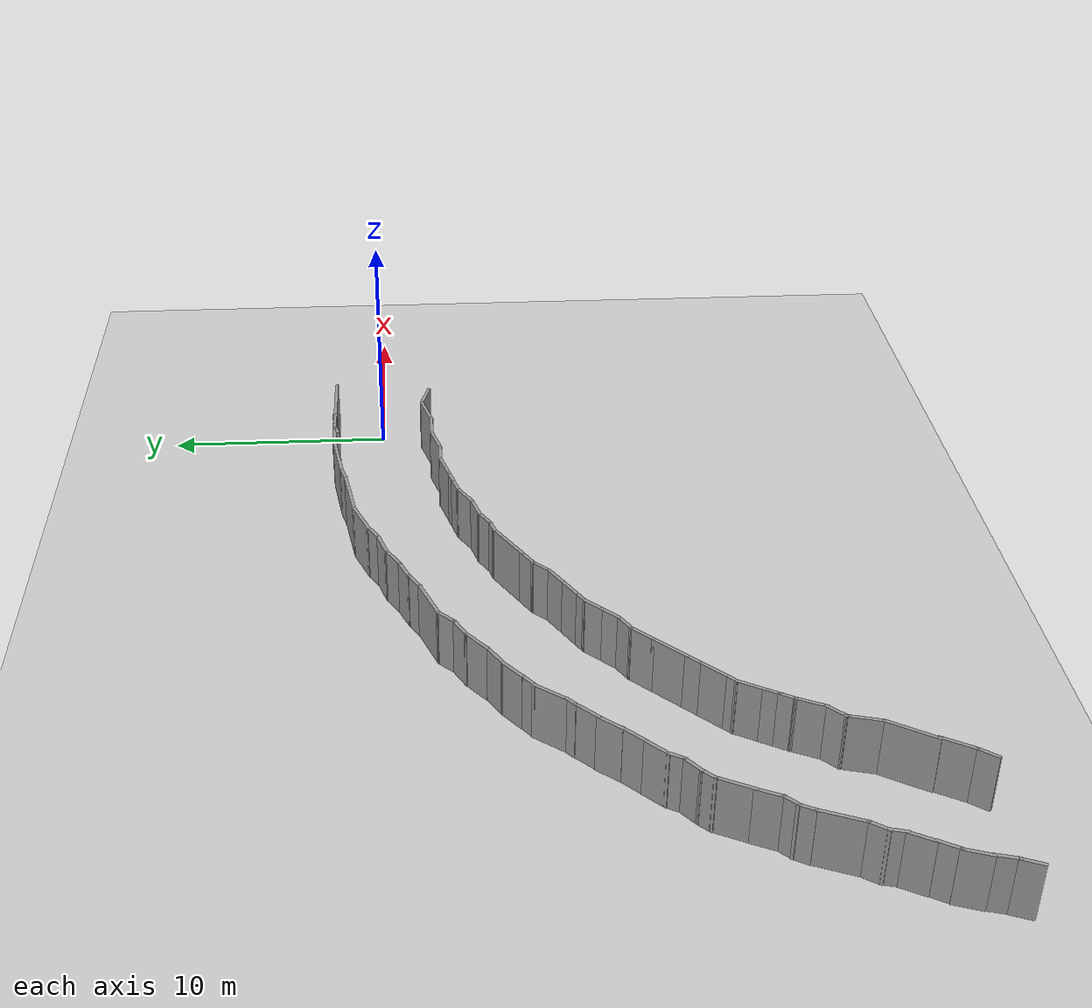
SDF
<sdf version="1.6">
 <world name="default">
  <model name="ground_plane">
   <static>1</static>
   <link name="link">
    <collision name="collision">
     <geometry><plane><normal>0 0 1</normal><size>100 100</size></plane></geometry>
     <surface><friction><ode><mu>100</mu><mu2>50</mu2></ode></friction></surface>
    </collision>
    <visual name="visual">
     <cast_shadows>0</cast_shadows>
     <geometry><plane><normal>0 0 1</normal><size>100 100</size></plane></geometry>
     <material>
      <script><uri>file://media/materials/scripts/gazebo.material</uri><name>Gazebo/Grey</name></script>
     </material>
    </visual>
   </link>
  </model>
  <model name="yuvarlak_sonnn">
   <pose>8.74042 -31.6469 0 0 -0 0</pose>
   <link name="Wall_0">
    <collision name="Wall_0_Collision">
     <geometry><box><size>1.75 0.15 2.5</size></box></geometry>
     <pose>0 0 1.25 0 -0 0</pose>
    </collision>
    <visual name="Wall_0_Visual">
     <pose>0 0 1.25 0 -0 0</pose>
     <geometry><box><size>1.75 0.15 2.5</size></box></geometry>
     <material>
      <script><uri>file://media/materials/scripts/gazebo.material</uri><name>Gazebo/Grey</name></script>
      <ambient>1 1 1 1</ambient>
     </material>
    </visual>
    <pose>-12.1248 33.8367 0 0 -0 3.14159</pose>
   </link>
   <link name="Wall_1">
    <collision name="Wall_1_Collision">
     <geometry><box><size>2.72829 0.15 2.5</size></box></geometry>
     <pose>0 0 1.25 0 -0 0</pose>
    </collision>
    <visual name="Wall_1_Visual">
     <pose>0 0 1.25 0 -0 0</pose>
     <geometry><box><size>2.72829 0.15 2.5</size></box></geometry>
     <material>
      <script><uri>file://media/materials/scripts/gazebo.material</uri><name>Gazebo/Grey</name></script>
      <ambient>1 1 1 1</ambient>
     </material>
    </visual>
    <pose>-14.1992 33.6426 0 0 0 -2.99044</pose>
   </link>
   <link name="Wall_10">
    <collision name="Wall_10_Collision">
     <geometry><box><size>2.14763 0.15 2.5</size></box></geometry>
     <pose>0 0 1.25 0 -0 0</pose>
    </collision>
    <visual name="Wall_10_Visual">
     <pose>0 0 1.25 0 -0 0</pose>
     <geometry><box><size>2.14763 0.15 2.5</size></box></geometry>
     <material>
      <script><uri>file://media/materials/scripts/gazebo.material</uri><name>Gazebo/Grey</name></script>
      <ambient>1 1 1 1</ambient>
     </material>
    </visual>
    <pose>-25.8104 29.7111 0 0 0 -2.77887</pose>
   </link>
   <link name="Wall_11">
    <collision name="Wall_11_Collision">
     <geometry><box><size>1 0.15 2.5</size></box></geometry>
     <pose>0 0 1.25 0 -0 0</pose>
    </collision>
    <visual name="Wall_11_Visual">
     <pose>0 0 1.25 0 -0 0</pose>
     <geometry><box><size>1 0.15 2.5</size></box></geometry>
     <material>
      <script><uri>file://media/materials/scripts/gazebo.material</uri><name>Gazebo/Grey</name></script>
      <ambient>1 1 1 1</ambient>
     </material>
    </visual>
    <pose>-27.0448 29.0562 0 0 0 -2.35619</pose>
   </link>
   <link name="Wall_12">
    <collision name="Wall_12_Collision">
     <geometry><box><size>1.1633 0.15 2.5</size></box></geometry>
     <pose>0 0 1.25 0 -0 0</pose>
    </collision>
    <visual name="Wall_12_Visual">
     <pose>0 0 1.25 0 -0 0</pose>
     <geometry><box><size>1.1633 0.15 2.5</size></box></geometry>
     <material>
      <script><uri>file://media/materials/scripts/gazebo.material</uri><name>Gazebo/Grey</name></script>
      <ambient>1 1 1 1</ambient>
     </material>
    </visual>
    <pose>-27.7967 28.5256 0 0 0 -2.67011</pose>
   </link>
   <link name="Wall_13">
    <collision name="Wall_13_Collision">
     <geometry><box><size>1.34384 0.15 2.5</size></box></geometry>
     <pose>0 0 1.25 0 -0 0</pose>
    </collision>
    <visual name="Wall_13_Visual">
     <pose>0 0 1.25 0 -0 0</pose>
     <geometry><box><size>1.34384 0.15 2.5</size></box></geometry>
     <material>
      <script><uri>file://media/materials/scripts/gazebo.material</uri><name>Gazebo/Grey</name></script>
      <ambient>1 1 1 1</ambient>
     </material>
    </visual>
    <pose>-28.6973 27.9267 0 0 0 -2.47561</pose>
   </link>
   <link name="Wall_14">
    <collision name="Wall_14_Collision">
     <geometry><box><size>1.25 0.15 2.5</size></box></geometry>
     <pose>0 0 1.25 0 -0 0</pose>
    </collision>
    <visual name="Wall_14_Visual">
     <pose>0 0 1.25 0 -0 0</pose>
     <geometry><box><size>1.25 0.15 2.5</size></box></geometry>
     <material>
      <script><uri>file://media/materials/scripts/gazebo.material</uri><name>Gazebo/Grey</name></script>
      <ambient>1 1 1 1</ambient>
     </material>
    </visual>
    <pose>-29.643 27.2628 0 0 0 -2.61799</pose>
   </link>
   <link name="Wall_15">
    <collision name="Wall_15_Collision">
     <geometry><box><size>1.22954 0.15 2.5</size></box></geometry>
     <pose>0 0 1.25 0 -0 0</pose>
    </collision>
    <visual name="Wall_15_Visual">
     <pose>0 0 1.25 0 -0 0</pose>
     <geometry><box><size>1.22954 0.15 2.5</size></box></geometry>
     <material>
      <script><uri>file://media/materials/scripts/gazebo.material</uri><name>Gazebo/Grey</name></script>
      <ambient>1 1 1 1</ambient>
     </material>
    </visual>
    <pose>-30.5452 26.6562 0 0 0 -2.48018</pose>
   </link>
   <link name="Wall_16">
    <collision name="Wall_16_Collision">
     <geometry><box><size>0.850612 0.15 2.5</size></box></geometry>
     <pose>0 0 1.25 0 -0 0</pose>
    </collision>
    <visual name="Wall_16_Visual">
     <pose>0 0 1.25 0 -0 0</pose>
     <geometry><box><size>0.850612 0.15 2.5</size></box></geometry>
     <material>
      <script><uri>file://media/materials/scripts/gazebo.material</uri><name>Gazebo/Grey</name></script>
      <ambient>1 1 1 1</ambient>
     </material>
    </visual>
    <pose>-31.2519 26.095 0 0 0 -2.50044</pose>
   </link>
   <link name="Wall_163">
    <collision name="Wall_163_Collision">
     <geometry><box><size>3 0.15 2.5</size></box></geometry>
     <pose>0 0 1.25 0 -0 0</pose>
    </collision>
    <visual name="Wall_163_Visual">
     <pose>0 0 1.25 0 -0 0</pose>
     <geometry><box><size>3 0.15 2.5</size></box></geometry>
     <material>
      <script><uri>file://media/materials/scripts/gazebo.material</uri><name>Gazebo/Grey</name></script>
      <ambient>1 1 1 1</ambient>
     </material>
    </visual>
    <pose>-9.04749 33.8433 0 0 -0 3.14159</pose>
   </link>
   <link name="Wall_164">
    <collision name="Wall_164_Collision">
     <geometry><box><size>0.182988 0.15 2.5</size></box></geometry>
     <pose>0 0 1.25 0 -0 0</pose>
    </collision>
    <visual name="Wall_164_Visual">
     <pose>0 0 1.25 0 -0 0</pose>
     <geometry><box><size>0.182988 0.15 2.5</size></box></geometry>
     <material>
      <script><uri>file://media/materials/scripts/gazebo.material</uri><name>Gazebo/Grey</name></script>
      <ambient>1 1 1 1</ambient>
     </material>
    </visual>
    <pose>-10.4874 33.8564 0 0 0 -2.70446</pose>
   </link>
   <link name="Wall_165">
    <collision name="Wall_165_Collision">
     <geometry><box><size>1.25 0.15 2.5</size></box></geometry>
     <pose>0 0 1.25 0 -0 0</pose>
    </collision>
    <visual name="Wall_165_Visual">
     <pose>0 0 1.25 0 -0 0</pose>
     <geometry><box><size>1.25 0.15 2.5</size></box></geometry>
     <material>
      <script><uri>file://media/materials/scripts/gazebo.material</uri><name>Gazebo/Grey</name></script>
      <ambient>1 1 1 1</ambient>
     </material>
    </visual>
    <pose>-11.0524 33.8494 0 0 -0 3.14159</pose>
   </link>
   <link name="Wall_166">
    <collision name="Wall_166_Collision">
     <geometry><box><size>0.75 0.15 2.5</size></box></geometry>
     <pose>0 0 1.25 0 -0 0</pose>
    </collision>
    <visual name="Wall_166_Visual">
     <pose>0 0 1.25 0 -0 0</pose>
     <geometry><box><size>0.75 0.15 2.5</size></box></geometry>
     <material>
      <script><uri>file://media/materials/scripts/gazebo.material</uri><name>Gazebo/Grey</name></script>
      <ambient>1 1 1 1</ambient>
     </material>
    </visual>
    <pose>-11.8922 33.7718 0 0 0 -2.87979</pose>
   </link>
   <link name="Wall_17">
    <collision name="Wall_17_Collision">
     <geometry><box><size>1.59545 0.15 2.5</size></box></geometry>
     <pose>0 0 1.25 0 -0 0</pose>
    </collision>
    <visual name="Wall_17_Visual">
     <pose>0 0 1.25 0 -0 0</pose>
     <geometry><box><size>1.59545 0.15 2.5</size></box></geometry>
     <material>
      <script><uri>file://media/materials/scripts/gazebo.material</uri><name>Gazebo/Grey</name></script>
      <ambient>1 1 1 1</ambient>
     </material>
    </visual>
    <pose>-31.9798 25.3378 0 0 0 -2.23785</pose>
   </link>
   <link name="Wall_18">
    <collision name="Wall_18_Collision">
     <geometry><box><size>0.617622 0.15 2.5</size></box></geometry>
     <pose>0 0 1.25 0 -0 0</pose>
    </collision>
    <visual name="Wall_18_Visual">
     <pose>0 0 1.25 0 -0 0</pose>
     <geometry><box><size>0.617622 0.15 2.5</size></box></geometry>
     <material>
      <script><uri>file://media/materials/scripts/gazebo.material</uri><name>Gazebo/Grey</name></script>
      <ambient>1 1 1 1</ambient>
     </material>
    </visual>
    <pose>-32.5861 24.62 0 0 0 -2.44508</pose>
   </link>
   <link name="Wall_184">
    <collision name="Wall_184_Collision">
     <geometry><box><size>0.75 0.15 2.5</size></box></geometry>
     <pose>0 0 1.25 0 -0 0</pose>
    </collision>
    <visual name="Wall_184_Visual">
     <pose>0 0 1.25 0 -0 0</pose>
     <geometry><box><size>0.75 0.15 2.5</size></box></geometry>
     <material>
      <script><uri>file://media/materials/scripts/gazebo.material</uri><name>Gazebo/Grey</name></script>
      <ambient>1 1 1 1</ambient>
     </material>
    </visual>
    <pose>-32.7119 16.5989 0 0 0 -2.0944</pose>
   </link>
   <link name="Wall_186">
    <collision name="Wall_186_Collision">
     <geometry><box><size>0.75 0.15 2.5</size></box></geometry>
     <pose>0 0 1.25 0 -0 0</pose>
    </collision>
    <visual name="Wall_186_Visual">
     <pose>0 0 1.25 0 -0 0</pose>
     <geometry><box><size>0.75 0.15 2.5</size></box></geometry>
     <material>
      <script><uri>file://media/materials/scripts/gazebo.material</uri><name>Gazebo/Grey</name></script>
      <ambient>1 1 1 1</ambient>
     </material>
    </visual>
    <pose>-32.4119 17.1185 0 0 -0 1.0472</pose>
   </link>
   <link name="Wall_187">
    <collision name="Wall_187_Collision">
     <geometry><box><size>1.25 0.15 2.5</size></box></geometry>
     <pose>0 0 1.25 0 -0 0</pose>
    </collision>
    <visual name="Wall_187_Visual">
     <pose>0 0 1.25 0 -0 0</pose>
     <geometry><box><size>1.25 0.15 2.5</size></box></geometry>
     <material>
      <script><uri>file://media/materials/scripts/gazebo.material</uri><name>Gazebo/Grey</name></script>
      <ambient>1 1 1 1</ambient>
     </material>
    </visual>
    <pose>-31.9869 17.8546 0 0 -0 1.0472</pose>
   </link>
   <link name="Wall_188">
    <collision name="Wall_188_Collision">
     <geometry><box><size>0.5 0.15 2.5</size></box></geometry>
     <pose>0 0 1.25 0 -0 0</pose>
    </collision>
    <visual name="Wall_188_Visual">
     <pose>0 0 1.25 0 -0 0</pose>
     <geometry><box><size>0.5 0.15 2.5</size></box></geometry>
     <material>
      <script><uri>file://media/materials/scripts/gazebo.material</uri><name>Gazebo/Grey</name></script>
      <ambient>1 1 1 1</ambient>
     </material>
    </visual>
    <pose>-31.5881 18.4547 0 0 -0 0.785398</pose>
   </link>
   <link name="Wall_189">
    <collision name="Wall_189_Collision">
     <geometry><box><size>1.5 0.15 2.5</size></box></geometry>
     <pose>0 0 1.25 0 -0 0</pose>
    </collision>
    <visual name="Wall_189_Visual">
     <pose>0 0 1.25 0 -0 0</pose>
     <geometry><box><size>1.5 0.15 2.5</size></box></geometry>
     <material>
      <script><uri>file://media/materials/scripts/gazebo.material</uri><name>Gazebo/Grey</name></script>
      <ambient>1 1 1 1</ambient>
     </material>
    </visual>
    <pose>-30.9871 19.0557 0 0 -0 0.785398</pose>
   </link>
   <link name="Wall_190">
    <collision name="Wall_190_Collision">
     <geometry><box><size>0.75 0.15 2.5</size></box></geometry>
     <pose>0 0 1.25 0 -0 0</pose>
    </collision>
    <visual name="Wall_190_Visual">
     <pose>0 0 1.25 0 -0 0</pose>
     <geometry><box><size>0.75 0.15 2.5</size></box></geometry>
     <material>
      <script><uri>file://media/materials/scripts/gazebo.material</uri><name>Gazebo/Grey</name></script>
      <ambient>1 1 1 1</ambient>
     </material>
    </visual>
    <pose>-30.2977 19.7452 0 0 -0 0.785398</pose>
   </link>
   <link name="Wall_191">
    <collision name="Wall_191_Collision">
     <geometry><box><size>1.75 0.15 2.5</size></box></geometry>
     <pose>0 0 1.25 0 -0 0</pose>
    </collision>
    <visual name="Wall_191_Visual">
     <pose>0 0 1.25 0 -0 0</pose>
     <geometry><box><size>1.75 0.15 2.5</size></box></geometry>
     <material>
      <script><uri>file://media/materials/scripts/gazebo.material</uri><name>Gazebo/Grey</name></script>
      <ambient>1 1 1 1</ambient>
     </material>
    </visual>
    <pose>-29.5199 20.523 0 0 -0 0.785398</pose>
   </link>
   <link name="Wall_192">
    <collision name="Wall_192_Collision">
     <geometry><box><size>1.25 0.15 2.5</size></box></geometry>
     <pose>0 0 1.25 0 -0 0</pose>
    </collision>
    <visual name="Wall_192_Visual">
     <pose>0 0 1.25 0 -0 0</pose>
     <geometry><box><size>1.25 0.15 2.5</size></box></geometry>
     <material>
      <script><uri>file://media/materials/scripts/gazebo.material</uri><name>Gazebo/Grey</name></script>
      <ambient>1 1 1 1</ambient>
     </material>
    </visual>
    <pose>-28.5653 21.4776 0 0 -0 0.785398</pose>
   </link>
   <link name="Wall_193">
    <collision name="Wall_193_Collision">
     <geometry><box><size>1 0.15 2.5</size></box></geometry>
     <pose>0 0 1.25 0 -0 0</pose>
    </collision>
    <visual name="Wall_193_Visual">
     <pose>0 0 1.25 0 -0 0</pose>
     <geometry><box><size>1 0.15 2.5</size></box></geometry>
     <material>
      <script><uri>file://media/materials/scripts/gazebo.material</uri><name>Gazebo/Grey</name></script>
      <ambient>1 1 1 1</ambient>
     </material>
    </visual>
    <pose>-27.8083 22.079 0 0 -0 0.523599</pose>
   </link>
   <link name="Wall_194">
    <collision name="Wall_194_Collision">
     <geometry><box><size>1 0.15 2.5</size></box></geometry>
     <pose>0 0 1.25 0 -0 0</pose>
    </collision>
    <visual name="Wall_194_Visual">
     <pose>0 0 1.25 0 -0 0</pose>
     <geometry><box><size>1 0.15 2.5</size></box></geometry>
     <material>
      <script><uri>file://media/materials/scripts/gazebo.material</uri><name>Gazebo/Grey</name></script>
      <ambient>1 1 1 1</ambient>
     </material>
    </visual>
    <pose>-27.1397 22.592 0 0 -0 0.785398</pose>
   </link>
   <link name="Wall_195">
    <collision name="Wall_195_Collision">
     <geometry><box><size>1 0.15 2.5</size></box></geometry>
     <pose>0 0 1.25 0 -0 0</pose>
    </collision>
    <visual name="Wall_195_Visual">
     <pose>0 0 1.25 0 -0 0</pose>
     <geometry><box><size>1 0.15 2.5</size></box></geometry>
     <material>
      <script><uri>file://media/materials/scripts/gazebo.material</uri><name>Gazebo/Grey</name></script>
      <ambient>1 1 1 1</ambient>
     </material>
    </visual>
    <pose>-26.5387 23.1931 0 0 -0 0.785398</pose>
   </link>
   <link name="Wall_196">
    <collision name="Wall_196_Collision">
     <geometry><box><size>0.75 0.15 2.5</size></box></geometry>
     <pose>0 0 1.25 0 -0 0</pose>
    </collision>
    <visual name="Wall_196_Visual">
     <pose>0 0 1.25 0 -0 0</pose>
     <geometry><box><size>0.75 0.15 2.5</size></box></geometry>
     <material>
      <script><uri>file://media/materials/scripts/gazebo.material</uri><name>Gazebo/Grey</name></script>
      <ambient>1 1 1 1</ambient>
     </material>
    </visual>
    <pose>-25.9783 23.6436 0 0 -0 0.523599</pose>
   </link>
   <link name="Wall_197">
    <collision name="Wall_197_Collision">
     <geometry><box><size>1 0.15 2.5</size></box></geometry>
     <pose>0 0 1.25 0 -0 0</pose>
    </collision>
    <visual name="Wall_197_Visual">
     <pose>0 0 1.25 0 -0 0</pose>
     <geometry><box><size>1 0.15 2.5</size></box></geometry>
     <material>
      <script><uri>file://media/materials/scripts/gazebo.material</uri><name>Gazebo/Grey</name></script>
      <ambient>1 1 1 1</ambient>
     </material>
    </visual>
    <pose>-25.3505 24.0061 0 0 -0 0.523599</pose>
   </link>
   <link name="Wall_198">
    <collision name="Wall_198_Collision">
     <geometry><box><size>1.25 0.15 2.5</size></box></geometry>
     <pose>0 0 1.25 0 -0 0</pose>
    </collision>
    <visual name="Wall_198_Visual">
     <pose>0 0 1.25 0 -0 0</pose>
     <geometry><box><size>1.25 0.15 2.5</size></box></geometry>
     <material>
      <script><uri>file://media/materials/scripts/gazebo.material</uri><name>Gazebo/Grey</name></script>
      <ambient>1 1 1 1</ambient>
     </material>
    </visual>
    <pose>-24.5061 24.4936 0 0 -0 0.523599</pose>
   </link>
   <link name="Wall_199">
    <collision name="Wall_199_Collision">
     <geometry><box><size>1 0.15 2.5</size></box></geometry>
     <pose>0 0 1.25 0 -0 0</pose>
    </collision>
    <visual name="Wall_199_Visual">
     <pose>0 0 1.25 0 -0 0</pose>
     <geometry><box><size>1 0.15 2.5</size></box></geometry>
     <material>
      <script><uri>file://media/materials/scripts/gazebo.material</uri><name>Gazebo/Grey</name></script>
      <ambient>1 1 1 1</ambient>
     </material>
    </visual>
    <pose>-23.7293 25.0691 0 0 -0 0.785398</pose>
   </link>
   <link name="Wall_2">
    <collision name="Wall_2_Collision">
     <geometry><box><size>1 0.15 2.5</size></box></geometry>
     <pose>0 0 1.25 0 -0 0</pose>
    </collision>
    <visual name="Wall_2_Visual">
     <pose>0 0 1.25 0 -0 0</pose>
     <geometry><box><size>1 0.15 2.5</size></box></geometry>
     <material>
      <script><uri>file://media/materials/scripts/gazebo.material</uri><name>Gazebo/Grey</name></script>
      <ambient>1 1 1 1</ambient>
     </material>
    </visual>
    <pose>-15.8842 33.3385 0 0 0 -2.87979</pose>
   </link>
   <link name="Wall_20">
    <collision name="Wall_20_Collision">
     <geometry><box><size>1.25 0.15 2.5</size></box></geometry>
     <pose>0 0 1.25 0 -0 0</pose>
    </collision>
    <visual name="Wall_20_Visual">
     <pose>0 0 1.25 0 -0 0</pose>
     <geometry><box><size>1.25 0.15 2.5</size></box></geometry>
     <material>
      <script><uri>file://media/materials/scripts/gazebo.material</uri><name>Gazebo/Grey</name></script>
      <ambient>1 1 1 1</ambient>
     </material>
    </visual>
    <pose>-33.1343 24.0811 0 0 0 -2.35619</pose>
   </link>
   <link name="Wall_200">
    <collision name="Wall_200_Collision">
     <geometry><box><size>1 0.15 2.5</size></box></geometry>
     <pose>0 0 1.25 0 -0 0</pose>
    </collision>
    <visual name="Wall_200_Visual">
     <pose>0 0 1.25 0 -0 0</pose>
     <geometry><box><size>1 0.15 2.5</size></box></geometry>
     <material>
      <script><uri>file://media/materials/scripts/gazebo.material</uri><name>Gazebo/Grey</name></script>
      <ambient>1 1 1 1</ambient>
     </material>
    </visual>
    <pose>-23.0607 25.5821 0 0 -0 0.523599</pose>
   </link>
   <link name="Wall_201">
    <collision name="Wall_201_Collision">
     <geometry><box><size>2.25 0.15 2.5</size></box></geometry>
     <pose>0 0 1.25 0 -0 0</pose>
    </collision>
    <visual name="Wall_201_Visual">
     <pose>0 0 1.25 0 -0 0</pose>
     <geometry><box><size>2.25 0.15 2.5</size></box></geometry>
     <material>
      <script><uri>file://media/materials/scripts/gazebo.material</uri><name>Gazebo/Grey</name></script>
      <ambient>1 1 1 1</ambient>
     </material>
    </visual>
    <pose>-21.7833 26.3196 0 0 -0 0.523599</pose>
   </link>
   <link name="Wall_202">
    <collision name="Wall_202_Collision">
     <geometry><box><size>0.75 0.15 2.5</size></box></geometry>
     <pose>0 0 1.25 0 -0 0</pose>
    </collision>
    <visual name="Wall_202_Visual">
     <pose>0 0 1.25 0 -0 0</pose>
     <geometry><box><size>0.75 0.15 2.5</size></box></geometry>
     <material>
      <script><uri>file://media/materials/scripts/gazebo.material</uri><name>Gazebo/Grey</name></script>
      <ambient>1 1 1 1</ambient>
     </material>
    </visual>
    <pose>-20.5842 26.9223 0 0 -0 0.261799</pose>
   </link>
   <link name="Wall_203">
    <collision name="Wall_203_Collision">
     <geometry><box><size>1 0.15 2.5</size></box></geometry>
     <pose>0 0 1.25 0 -0 0</pose>
    </collision>
    <visual name="Wall_203_Visual">
     <pose>0 0 1.25 0 -0 0</pose>
     <geometry><box><size>1 0.15 2.5</size></box></geometry>
     <material>
      <script><uri>file://media/materials/scripts/gazebo.material</uri><name>Gazebo/Grey</name></script>
      <ambient>1 1 1 1</ambient>
     </material>
    </visual>
    <pose>-19.9264 27.2124 0 0 -0 0.523599</pose>
   </link>
   <link name="Wall_204">
    <collision name="Wall_204_Collision">
     <geometry><box><size>1.25 0.15 2.5</size></box></geometry>
     <pose>0 0 1.25 0 -0 0</pose>
    </collision>
    <visual name="Wall_204_Visual">
     <pose>0 0 1.25 0 -0 0</pose>
     <geometry><box><size>1.25 0.15 2.5</size></box></geometry>
     <material>
      <script><uri>file://media/materials/scripts/gazebo.material</uri><name>Gazebo/Grey</name></script>
      <ambient>1 1 1 1</ambient>
     </material>
    </visual>
    <pose>-19.027 27.5673 0 0 -0 0.261799</pose>
   </link>
   <link name="Wall_205">
    <collision name="Wall_205_Collision">
     <geometry><box><size>1.25 0.15 2.5</size></box></geometry>
     <pose>0 0 1.25 0 -0 0</pose>
    </collision>
    <visual name="Wall_205_Visual">
     <pose>0 0 1.25 0 -0 0</pose>
     <geometry><box><size>1.25 0.15 2.5</size></box></geometry>
     <material>
      <script><uri>file://media/materials/scripts/gazebo.material</uri><name>Gazebo/Grey</name></script>
      <ambient>1 1 1 1</ambient>
     </material>
    </visual>
    <pose>-18.0195 27.9846 0 0 -0 0.523599</pose>
   </link>
   <link name="Wall_206">
    <collision name="Wall_206_Collision">
     <geometry><box><size>1 0.15 2.5</size></box></geometry>
     <pose>0 0 1.25 0 -0 0</pose>
    </collision>
    <visual name="Wall_206_Visual">
     <pose>0 0 1.25 0 -0 0</pose>
     <geometry><box><size>1 0.15 2.5</size></box></geometry>
     <material>
      <script><uri>file://media/materials/scripts/gazebo.material</uri><name>Gazebo/Grey</name></script>
      <ambient>1 1 1 1</ambient>
     </material>
    </visual>
    <pose>-17.1326 28.3696 0 0 -0 0.261799</pose>
   </link>
   <link name="Wall_207">
    <collision name="Wall_207_Collision">
     <geometry><box><size>0.75 0.15 2.5</size></box></geometry>
     <pose>0 0 1.25 0 -0 0</pose>
    </collision>
    <visual name="Wall_207_Visual">
     <pose>0 0 1.25 0 -0 0</pose>
     <geometry><box><size>0.75 0.15 2.5</size></box></geometry>
     <material>
      <script><uri>file://media/materials/scripts/gazebo.material</uri><name>Gazebo/Grey</name></script>
      <ambient>1 1 1 1</ambient>
     </material>
    </visual>
    <pose>-16.4323 28.5572 0 0 -0 0.261799</pose>
   </link>
   <link name="Wall_208">
    <collision name="Wall_208_Collision">
     <geometry><box><size>1.5 0.15 2.5</size></box></geometry>
     <pose>0 0 1.25 0 -0 0</pose>
    </collision>
    <visual name="Wall_208_Visual">
     <pose>0 0 1.25 0 -0 0</pose>
     <geometry><box><size>1.5 0.15 2.5</size></box></geometry>
     <material>
      <script><uri>file://media/materials/scripts/gazebo.material</uri><name>Gazebo/Grey</name></script>
      <ambient>1 1 1 1</ambient>
     </material>
    </visual>
    <pose>-15.4906 28.8096 0 0 -0 0.261799</pose>
   </link>
   <link name="Wall_209">
    <collision name="Wall_209_Collision">
     <geometry><box><size>1.25 0.15 2.5</size></box></geometry>
     <pose>0 0 1.25 0 -0 0</pose>
    </collision>
    <visual name="Wall_209_Visual">
     <pose>0 0 1.25 0 -0 0</pose>
     <geometry><box><size>1.25 0.15 2.5</size></box></geometry>
     <material>
      <script><uri>file://media/materials/scripts/gazebo.material</uri><name>Gazebo/Grey</name></script>
      <ambient>1 1 1 1</ambient>
     </material>
    </visual>
    <pose>-14.2886 28.9843 0 0 -0 0</pose>
   </link>
   <link name="Wall_21">
    <collision name="Wall_21_Collision">
     <geometry><box><size>1.17311 0.15 2.5</size></box></geometry>
     <pose>0 0 1.25 0 -0 0</pose>
    </collision>
    <visual name="Wall_21_Visual">
     <pose>0 0 1.25 0 -0 0</pose>
     <geometry><box><size>1.17311 0.15 2.5</size></box></geometry>
     <material>
      <script><uri>file://media/materials/scripts/gazebo.material</uri><name>Gazebo/Grey</name></script>
      <ambient>1 1 1 1</ambient>
     </material>
    </visual>
    <pose>-33.8765 23.304 0 0 0 -2.28011</pose>
   </link>
   <link name="Wall_210">
    <collision name="Wall_210_Collision">
     <geometry><box><size>1.5 0.15 2.5</size></box></geometry>
     <pose>0 0 1.25 0 -0 0</pose>
    </collision>
    <visual name="Wall_210_Visual">
     <pose>0 0 1.25 0 -0 0</pose>
     <geometry><box><size>1.5 0.15 2.5</size></box></geometry>
     <material>
      <script><uri>file://media/materials/scripts/gazebo.material</uri><name>Gazebo/Grey</name></script>
      <ambient>1 1 1 1</ambient>
     </material>
    </visual>
    <pose>-13.0866 29.159 0 0 -0 0.261799</pose>
   </link>
   <link name="Wall_211">
    <collision name="Wall_211_Collision">
     <geometry><box><size>1.5 0.15 2.5</size></box></geometry>
     <pose>0 0 1.25 0 -0 0</pose>
    </collision>
    <visual name="Wall_211_Visual">
     <pose>0 0 1.25 0 -0 0</pose>
     <geometry><box><size>1.5 0.15 2.5</size></box></geometry>
     <material>
      <script><uri>file://media/materials/scripts/gazebo.material</uri><name>Gazebo/Grey</name></script>
      <ambient>1 1 1 1</ambient>
     </material>
    </visual>
    <pose>-11.7596 29.3337 0 0 -0 0</pose>
   </link>
   <link name="Wall_212">
    <collision name="Wall_212_Collision">
     <geometry><box><size>1.75 0.15 2.5</size></box></geometry>
     <pose>0 0 1.25 0 -0 0</pose>
    </collision>
    <visual name="Wall_212_Visual">
     <pose>0 0 1.25 0 -0 0</pose>
     <geometry><box><size>1.75 0.15 2.5</size></box></geometry>
     <material>
      <script><uri>file://media/materials/scripts/gazebo.material</uri><name>Gazebo/Grey</name></script>
      <ambient>1 1 1 1</ambient>
     </material>
    </visual>
    <pose>-10.3118 29.5408 0 0 -0 0.261799</pose>
   </link>
   <link name="Wall_213">
    <collision name="Wall_213_Collision">
     <geometry><box><size>1.5 0.15 2.5</size></box></geometry>
     <pose>0 0 1.25 0 -0 0</pose>
    </collision>
    <visual name="Wall_213_Visual">
     <pose>0 0 1.25 0 -0 0</pose>
     <geometry><box><size>1.5 0.15 2.5</size></box></geometry>
     <material>
      <script><uri>file://media/materials/scripts/gazebo.material</uri><name>Gazebo/Grey</name></script>
      <ambient>1 1 1 1</ambient>
     </material>
    </visual>
    <pose>-8.88707 29.5731 0 0 0 -0.261799</pose>
   </link>
   <link name="Wall_22">
    <collision name="Wall_22_Collision">
     <geometry><box><size>1.25 0.15 2.5</size></box></geometry>
     <pose>0 0 1.25 0 -0 0</pose>
    </collision>
    <visual name="Wall_22_Visual">
     <pose>0 0 1.25 0 -0 0</pose>
     <geometry><box><size>1.25 0.15 2.5</size></box></geometry>
     <material>
      <script><uri>file://media/materials/scripts/gazebo.material</uri><name>Gazebo/Grey</name></script>
      <ambient>1 1 1 1</ambient>
     </material>
    </visual>
    <pose>-34.5785 22.5269 0 0 0 -2.35619</pose>
   </link>
   <link name="Wall_23">
    <collision name="Wall_23_Collision">
     <geometry><box><size>1.16467 0.15 2.5</size></box></geometry>
     <pose>0 0 1.25 0 -0 0</pose>
    </collision>
    <visual name="Wall_23_Visual">
     <pose>0 0 1.25 0 -0 0</pose>
     <geometry><box><size>1.16467 0.15 2.5</size></box></geometry>
     <material>
      <script><uri>file://media/materials/scripts/gazebo.material</uri><name>Gazebo/Grey</name></script>
      <ambient>1 1 1 1</ambient>
     </material>
    </visual>
    <pose>-35.3462 21.7793 0 0 0 -2.35619</pose>
   </link>
   <link name="Wall_24">
    <collision name="Wall_24_Collision">
     <geometry><box><size>0.75 0.15 2.5</size></box></geometry>
     <pose>0 0 1.25 0 -0 0</pose>
    </collision>
    <visual name="Wall_24_Visual">
     <pose>0 0 1.25 0 -0 0</pose>
     <geometry><box><size>0.75 0.15 2.5</size></box></geometry>
     <material>
      <script><uri>file://media/materials/scripts/gazebo.material</uri><name>Gazebo/Grey</name></script>
      <ambient>1 1 1 1</ambient>
     </material>
    </visual>
    <pose>-35.8349 21.1607 0 0 0 -2.0944</pose>
   </link>
   <link name="Wall_25">
    <collision name="Wall_25_Collision">
     <geometry><box><size>0.970225 0.15 2.5</size></box></geometry>
     <pose>0 0 1.25 0 -0 0</pose>
    </collision>
    <visual name="Wall_25_Visual">
     <pose>0 0 1.25 0 -0 0</pose>
     <geometry><box><size>0.970225 0.15 2.5</size></box></geometry>
     <material>
      <script><uri>file://media/materials/scripts/gazebo.material</uri><name>Gazebo/Grey</name></script>
      <ambient>1 1 1 1</ambient>
     </material>
    </visual>
    <pose>-36.3263 20.6461 0 0 0 -2.47112</pose>
   </link>
   <link name="Wall_26">
    <collision name="Wall_26_Collision">
     <geometry><box><size>0.75 0.15 2.5</size></box></geometry>
     <pose>0 0 1.25 0 -0 0</pose>
    </collision>
    <visual name="Wall_26_Visual">
     <pose>0 0 1.25 0 -0 0</pose>
     <geometry><box><size>0.75 0.15 2.5</size></box></geometry>
     <material>
      <script><uri>file://media/materials/scripts/gazebo.material</uri><name>Gazebo/Grey</name></script>
      <ambient>1 1 1 1</ambient>
     </material>
    </visual>
    <pose>-36.8598 20.1791 0 0 0 -2.35619</pose>
   </link>
   <link name="Wall_27">
    <collision name="Wall_27_Collision">
     <geometry><box><size>1.61021 0.15 2.5</size></box></geometry>
     <pose>0 0 1.25 0 -0 0</pose>
    </collision>
    <visual name="Wall_27_Visual">
     <pose>0 0 1.25 0 -0 0</pose>
     <geometry><box><size>1.61021 0.15 2.5</size></box></geometry>
     <material>
      <script><uri>file://media/materials/scripts/gazebo.material</uri><name>Gazebo/Grey</name></script>
      <ambient>1 1 1 1</ambient>
     </material>
    </visual>
    <pose>-37.385 19.3174 0 0 0 -2.04468</pose>
   </link>
   <link name="Wall_28">
    <collision name="Wall_28_Collision">
     <geometry><box><size>1.15212 0.15 2.5</size></box></geometry>
     <pose>0 0 1.25 0 -0 0</pose>
    </collision>
    <visual name="Wall_28_Visual">
     <pose>0 0 1.25 0 -0 0</pose>
     <geometry><box><size>1.15212 0.15 2.5</size></box></geometry>
     <material>
      <script><uri>file://media/materials/scripts/gazebo.material</uri><name>Gazebo/Grey</name></script>
      <ambient>1 1 1 1</ambient>
     </material>
    </visual>
    <pose>-37.931 18.2342 0 0 0 -2.00958</pose>
   </link>
   <link name="Wall_29">
    <collision name="Wall_29_Collision">
     <geometry><box><size>0.75 0.15 2.5</size></box></geometry>
     <pose>0 0 1.25 0 -0 0</pose>
    </collision>
    <visual name="Wall_29_Visual">
     <pose>0 0 1.25 0 -0 0</pose>
     <geometry><box><size>0.75 0.15 2.5</size></box></geometry>
     <material>
      <script><uri>file://media/materials/scripts/gazebo.material</uri><name>Gazebo/Grey</name></script>
      <ambient>1 1 1 1</ambient>
     </material>
    </visual>
    <pose>-38.356 17.5685 0 0 0 -2.35619</pose>
   </link>
   <link name="Wall_3">
    <collision name="Wall_3_Collision">
     <geometry><box><size>2.72895 0.15 2.5</size></box></geometry>
     <pose>0 0 1.25 0 -0 0</pose>
    </collision>
    <visual name="Wall_3_Visual">
     <pose>0 0 1.25 0 -0 0</pose>
     <geometry><box><size>2.72895 0.15 2.5</size></box></geometry>
     <material>
      <script><uri>file://media/materials/scripts/gazebo.material</uri><name>Gazebo/Grey</name></script>
      <ambient>1 1 1 1</ambient>
     </material>
    </visual>
    <pose>-17.5675 33.0214 0 0 0 -2.98032</pose>
   </link>
   <link name="Wall_30">
    <collision name="Wall_30_Collision">
     <geometry><box><size>0.75 0.15 2.5</size></box></geometry>
     <pose>0 0 1.25 0 -0 0</pose>
    </collision>
    <visual name="Wall_30_Visual">
     <pose>0 0 1.25 0 -0 0</pose>
     <geometry><box><size>0.75 0.15 2.5</size></box></geometry>
     <material>
      <script><uri>file://media/materials/scripts/gazebo.material</uri><name>Gazebo/Grey</name></script>
      <ambient>1 1 1 1</ambient>
     </material>
    </visual>
    <pose>-38.7181 17.1167 0 0 0 -2.0944</pose>
   </link>
   <link name="Wall_31">
    <collision name="Wall_31_Collision">
     <geometry><box><size>1.92767 0.15 2.5</size></box></geometry>
     <pose>0 0 1.25 0 -0 0</pose>
    </collision>
    <visual name="Wall_31_Visual">
     <pose>0 0 1.25 0 -0 0</pose>
     <geometry><box><size>1.92767 0.15 2.5</size></box></geometry>
     <material>
      <script><uri>file://media/materials/scripts/gazebo.material</uri><name>Gazebo/Grey</name></script>
      <ambient>1 1 1 1</ambient>
     </material>
    </visual>
    <pose>-39.2083 16.0156 0 0 0 -1.96346</pose>
   </link>
   <link name="Wall_32">
    <collision name="Wall_32_Collision">
     <geometry><box><size>0.901318 0.15 2.5</size></box></geometry>
     <pose>0 0 1.25 0 -0 0</pose>
    </collision>
    <visual name="Wall_32_Visual">
     <pose>0 0 1.25 0 -0 0</pose>
     <geometry><box><size>0.901318 0.15 2.5</size></box></geometry>
     <material>
      <script><uri>file://media/materials/scripts/gazebo.material</uri><name>Gazebo/Grey</name></script>
      <ambient>1 1 1 1</ambient>
     </material>
    </visual>
    <pose>-39.7604 14.8843 0 0 0 -2.17057</pose>
   </link>
   <link name="Wall_33">
    <collision name="Wall_33_Collision">
     <geometry><box><size>0.75 0.15 2.5</size></box></geometry>
     <pose>0 0 1.25 0 -0 0</pose>
    </collision>
    <visual name="Wall_33_Visual">
     <pose>0 0 1.25 0 -0 0</pose>
     <geometry><box><size>0.75 0.15 2.5</size></box></geometry>
     <material>
      <script><uri>file://media/materials/scripts/gazebo.material</uri><name>Gazebo/Grey</name></script>
      <ambient>1 1 1 1</ambient>
     </material>
    </visual>
    <pose>-40.03 14.2844 0 0 0 -1.8326</pose>
   </link>
   <link name="Wall_34">
    <collision name="Wall_34_Collision">
     <geometry><box><size>1.10733 0.15 2.5</size></box></geometry>
     <pose>0 0 1.25 0 -0 0</pose>
    </collision>
    <visual name="Wall_34_Visual">
     <pose>0 0 1.25 0 -0 0</pose>
     <geometry><box><size>1.10733 0.15 2.5</size></box></geometry>
     <material>
      <script><uri>file://media/materials/scripts/gazebo.material</uri><name>Gazebo/Grey</name></script>
      <ambient>1 1 1 1</ambient>
     </material>
    </visual>
    <pose>-40.3604 13.5763 0 0 0 -2.07826</pose>
   </link>
   <link name="Wall_35">
    <collision name="Wall_35_Collision">
     <geometry><box><size>1 0.15 2.5</size></box></geometry>
     <pose>0 0 1.25 0 -0 0</pose>
    </collision>
    <visual name="Wall_35_Visual">
     <pose>0 0 1.25 0 -0 0</pose>
     <geometry><box><size>1 0.15 2.5</size></box></geometry>
     <material>
      <script><uri>file://media/materials/scripts/gazebo.material</uri><name>Gazebo/Grey</name></script>
      <ambient>1 1 1 1</ambient>
     </material>
    </visual>
    <pose>-40.7854 12.7899 0 0 0 -2.0944</pose>
   </link>
   <link name="Wall_355">
    <collision name="Wall_355_Collision">
     <geometry><box><size>1.5 0.15 2.5</size></box></geometry>
     <pose>0 0 1.25 0 -0 0</pose>
    </collision>
    <visual name="Wall_355_Visual">
     <pose>0 0 1.25 0 -0 0</pose>
     <geometry><box><size>1.5 0.15 2.5</size></box></geometry>
     <material>
      <script><uri>file://media/materials/scripts/gazebo.material</uri><name>Gazebo/Grey</name></script>
      <ambient>1 1 1 1</ambient>
     </material>
    </visual>
    <pose>-35.6892 11.0467 0 0 -0 1.0472</pose>
   </link>
   <link name="Wall_357">
    <collision name="Wall_357_Collision">
     <geometry><box><size>2.21241 0.15 2.5</size></box></geometry>
     <pose>0 0 1.25 0 -0 0</pose>
    </collision>
    <visual name="Wall_357_Visual">
     <pose>0 0 1.25 0 -0 0</pose>
     <geometry><box><size>2.21241 0.15 2.5</size></box></geometry>
     <material>
      <script><uri>file://media/materials/scripts/gazebo.material</uri><name>Gazebo/Grey</name></script>
      <ambient>1 1 1 1</ambient>
     </material>
    </visual>
    <pose>-34.8596 12.5064 0 0 -0 1.01334</pose>
   </link>
   <link name="Wall_358">
    <collision name="Wall_358_Collision">
     <geometry><box><size>1.5 0.15 2.5</size></box></geometry>
     <pose>0 0 1.25 0 -0 0</pose>
    </collision>
    <visual name="Wall_358_Visual">
     <pose>0 0 1.25 0 -0 0</pose>
     <geometry><box><size>1.5 0.15 2.5</size></box></geometry>
     <material>
      <script><uri>file://media/materials/scripts/gazebo.material</uri><name>Gazebo/Grey</name></script>
      <ambient>1 1 1 1</ambient>
     </material>
    </visual>
    <pose>-34.1394 14.0335 0 0 -0 1.309</pose>
   </link>
   <link name="Wall_359">
    <collision name="Wall_359_Collision">
     <geometry><box><size>1 0.15 2.5</size></box></geometry>
     <pose>0 0 1.25 0 -0 0</pose>
    </collision>
    <visual name="Wall_359_Visual">
     <pose>0 0 1.25 0 -0 0</pose>
     <geometry><box><size>1 0.15 2.5</size></box></geometry>
     <material>
      <script><uri>file://media/materials/scripts/gazebo.material</uri><name>Gazebo/Grey</name></script>
      <ambient>1 1 1 1</ambient>
     </material>
    </visual>
    <pose>-33.6642 14.986 0 0 -0 0.785398</pose>
   </link>
   <link name="Wall_36">
    <collision name="Wall_36_Collision">
     <geometry><box><size>1.18643 0.15 2.5</size></box></geometry>
     <pose>0 0 1.25 0 -0 0</pose>
    </collision>
    <visual name="Wall_36_Visual">
     <pose>0 0 1.25 0 -0 0</pose>
     <geometry><box><size>1.18643 0.15 2.5</size></box></geometry>
     <material>
      <script><uri>file://media/materials/scripts/gazebo.material</uri><name>Gazebo/Grey</name></script>
      <ambient>1 1 1 1</ambient>
     </material>
    </visual>
    <pose>-41.1903 11.9331 0 0 0 -1.90968</pose>
   </link>
   <link name="Wall_360">
    <collision name="Wall_360_Collision">
     <geometry><box><size>1.31609 0.15 2.5</size></box></geometry>
     <pose>0 0 1.25 0 -0 0</pose>
    </collision>
    <visual name="Wall_360_Visual">
     <pose>0 0 1.25 0 -0 0</pose>
     <geometry><box><size>1.31609 0.15 2.5</size></box></geometry>
     <material>
      <script><uri>file://media/materials/scripts/gazebo.material</uri><name>Gazebo/Grey</name></script>
      <ambient>1 1 1 1</ambient>
     </material>
    </visual>
    <pose>-33.1128 15.8128 0 0 -0 1.12597</pose>
   </link>
   <link name="Wall_361">
    <collision name="Wall_361_Collision">
     <geometry><box><size>0.16 0.15 2.5</size></box></geometry>
     <pose>0 0 1.25 0 -0 0</pose>
    </collision>
    <visual name="Wall_361_Visual">
     <pose>0 0 1.25 0 -0 0</pose>
     <geometry><box><size>0.16 0.15 2.5</size></box></geometry>
     <material>
      <script><uri>file://media/materials/scripts/gazebo.material</uri><name>Gazebo/Grey</name></script>
      <ambient>1 1 1 1</ambient>
     </material>
    </visual>
    <pose>-32.8569 16.3391 0 0 -0 0</pose>
   </link>
   <link name="Wall_363">
    <collision name="Wall_363_Collision">
     <geometry><box><size>0.957299 0.15 2.5</size></box></geometry>
     <pose>0 0 1.25 0 -0 0</pose>
    </collision>
    <visual name="Wall_363_Visual">
     <pose>0 0 1.25 0 -0 0</pose>
     <geometry><box><size>0.957299 0.15 2.5</size></box></geometry>
     <material>
      <script><uri>file://media/materials/scripts/gazebo.material</uri><name>Gazebo/Grey</name></script>
      <ambient>1 1 1 1</ambient>
     </material>
    </visual>
    <pose>-36.2743 10.1434 0 0 0 -2.23133</pose>
   </link>
   <link name="Wall_37">
    <collision name="Wall_37_Collision">
     <geometry><box><size>1 0.15 2.5</size></box></geometry>
     <pose>0 0 1.25 0 -0 0</pose>
    </collision>
    <visual name="Wall_37_Visual">
     <pose>0 0 1.25 0 -0 0</pose>
     <geometry><box><size>1 0.15 2.5</size></box></geometry>
     <material>
      <script><uri>file://media/materials/scripts/gazebo.material</uri><name>Gazebo/Grey</name></script>
      <ambient>1 1 1 1</ambient>
     </material>
    </visual>
    <pose>-41.4524 11.0338 0 0 0 -1.8326</pose>
   </link>
   <link name="Wall_38">
    <collision name="Wall_38_Collision">
     <geometry><box><size>0.928827 0.15 2.5</size></box></geometry>
     <pose>0 0 1.25 0 -0 0</pose>
    </collision>
    <visual name="Wall_38_Visual">
     <pose>0 0 1.25 0 -0 0</pose>
     <geometry><box><size>0.928827 0.15 2.5</size></box></geometry>
     <material>
      <script><uri>file://media/materials/scripts/gazebo.material</uri><name>Gazebo/Grey</name></script>
      <ambient>1 1 1 1</ambient>
     </material>
    </visual>
    <pose>-41.7306 10.2631 0 0 0 -1.96078</pose>
   </link>
   <link name="Wall_4">
    <collision name="Wall_4_Collision">
     <geometry><box><size>1.86344 0.15 2.5</size></box></geometry>
     <pose>0 0 1.25 0 -0 0</pose>
    </collision>
    <visual name="Wall_4_Visual">
     <pose>0 0 1.25 0 -0 0</pose>
     <geometry><box><size>1.86344 0.15 2.5</size></box></geometry>
     <material>
      <script><uri>file://media/materials/scripts/gazebo.material</uri><name>Gazebo/Grey</name></script>
      <ambient>1 1 1 1</ambient>
     </material>
    </visual>
    <pose>-19.636 32.497 0 0 0 -2.76208</pose>
   </link>
   <link name="Wall_5">
    <collision name="Wall_5_Collision">
     <geometry><box><size>1 0.15 2.5</size></box></geometry>
     <pose>0 0 1.25 0 -0 0</pose>
    </collision>
    <visual name="Wall_5_Visual">
     <pose>0 0 1.25 0 -0 0</pose>
     <geometry><box><size>1 0.15 2.5</size></box></geometry>
     <material>
      <script><uri>file://media/materials/scripts/gazebo.material</uri><name>Gazebo/Grey</name></script>
      <ambient>1 1 1 1</ambient>
     </material>
    </visual>
    <pose>-20.7797 31.9671 0 0 0 -2.61799</pose>
   </link>
   <link name="Wall_6">
    <collision name="Wall_6_Collision">
     <geometry><box><size>1.32608 0.15 2.5</size></box></geometry>
     <pose>0 0 1.25 0 -0 0</pose>
    </collision>
    <visual name="Wall_6_Visual">
     <pose>0 0 1.25 0 -0 0</pose>
     <geometry><box><size>1.32608 0.15 2.5</size></box></geometry>
     <material>
      <script><uri>file://media/materials/scripts/gazebo.material</uri><name>Gazebo/Grey</name></script>
      <ambient>1 1 1 1</ambient>
     </material>
    </visual>
    <pose>-21.7293 31.5799 0 0 0 -2.83995</pose>
   </link>
   <link name="Wall_7">
    <collision name="Wall_7_Collision">
     <geometry><box><size>1.25 0.15 2.5</size></box></geometry>
     <pose>0 0 1.25 0 -0 0</pose>
    </collision>
    <visual name="Wall_7_Visual">
     <pose>0 0 1.25 0 -0 0</pose>
     <geometry><box><size>1.25 0.15 2.5</size></box></geometry>
     <material>
      <script><uri>file://media/materials/scripts/gazebo.material</uri><name>Gazebo/Grey</name></script>
      <ambient>1 1 1 1</ambient>
     </material>
    </visual>
    <pose>-22.747 31.1302 0 0 0 -2.61799</pose>
   </link>
   <link name="Wall_8">
    <collision name="Wall_8_Collision">
     <geometry><box><size>1.11832 0.15 2.5</size></box></geometry>
     <pose>0 0 1.25 0 -0 0</pose>
    </collision>
    <visual name="Wall_8_Visual">
     <pose>0 0 1.25 0 -0 0</pose>
     <geometry><box><size>1.11832 0.15 2.5</size></box></geometry>
     <material>
      <script><uri>file://media/materials/scripts/gazebo.material</uri><name>Gazebo/Grey</name></script>
      <ambient>1 1 1 1</ambient>
     </material>
    </visual>
    <pose>-23.692 30.6729 0 0 0 -2.75548</pose>
   </link>
   <link name="Wall_9">
    <collision name="Wall_9_Collision">
     <geometry><box><size>1 0.15 2.5</size></box></geometry>
     <pose>0 0 1.25 0 -0 0</pose>
    </collision>
    <visual name="Wall_9_Visual">
     <pose>0 0 1.25 0 -0 0</pose>
     <geometry><box><size>1 0.15 2.5</size></box></geometry>
     <material>
      <script><uri>file://media/materials/scripts/gazebo.material</uri><name>Gazebo/Grey</name></script>
      <ambient>1 1 1 1</ambient>
     </material>
    </visual>
    <pose>-24.4884 30.278 0 0 0 -2.61799</pose>
   </link>
   <static>1</static>
  </model>
 </world>
</sdf>
